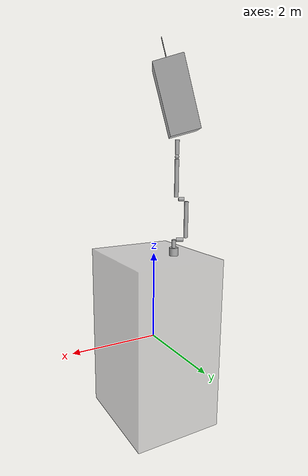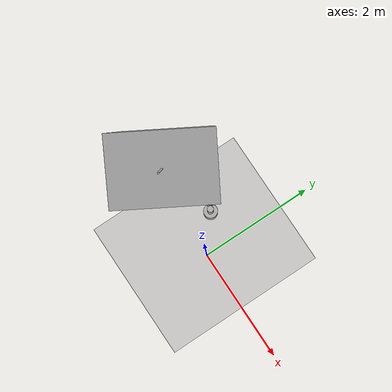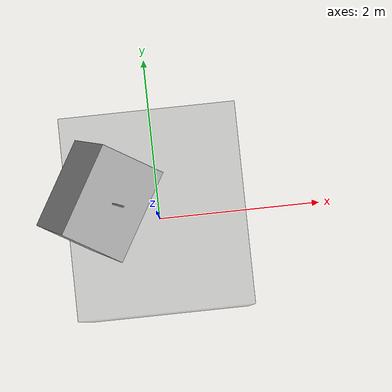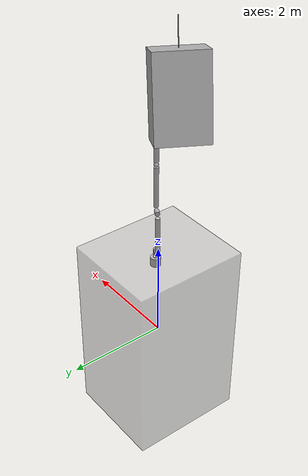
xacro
<?xml version="1.0" ?>
<robot xmlns:xacro="http://wiki.ros.org/xacro" name="FREND">
  <xacro:arg name="prefix" default=""/>
  <xacro:property name="mass_scale" value="1" />
  <xacro:property name="rval" value="0.7"/>
  <xacro:property name="gval" value="0.7"/>
  <xacro:property name="bval" value="0.7"/>

  <mujoco>
    <compiler fusestatic="false" inertiafromgeom="false" />
  </mujoco>

    <!-- Base link is referred to as "MRV in NG's docs"-->
  <link name="$(arg prefix)base_link">
    <visual>
      <origin rpy="0 0 0" xyz="0 0 0"/>
      <geometry>
        <box size="2.068 2.372 3.975"/>
      </geometry>
      <material name="transparent_gray">
        <color rgba="${rval} ${gval} ${bval} 0.5"/>
      </material>
    </visual>
    <inertial>
      <mass value="${4469*mass_scale}"/>
      <origin rpy="0 0 0" xyz="0 0 0"/>
      <inertia ixx="${7979.775268*mass_scale}" ixy="0" ixz="0"
               iyy="${7477.102148*mass_scale}" iyz="0" izz="${3688.045229*mass_scale}"/>
    </inertial>
    <collision>
      <origin rpy="0 0 0" xyz="0 0 0"/>
      <geometry>
        <box size="2.068 2.372 3.975"/>
      </geometry>
    </collision>
  </link>

    <!-- Joint/Link 0-->
  <joint name="$(arg prefix)joint0" type="fixed">
  <parent link="$(arg prefix)base_link"/>
    <child link="$(arg prefix)link0"/>
    <origin rpy="0 0 -2.0969" xyz="-0.3182 0.3182 1.9875"/>

  </joint>

  <link name="$(arg prefix)link0">
    <visual>
      <origin rpy="0 0 0" xyz="0 0 0.0894"/>
      <geometry>
        <cylinder length="0.178765" radius="0.1"/> <!-- We make link0 half the length of D1 in NG's doc.-->
      </geometry>
      <material name="black">
        <color rgba="${rval} ${gval} ${bval} 1"/>
      </material>
    </visual>
    <inertial>
      <mass value="${15.8469*mass_scale}"/>
      <origin rpy="0 0 0" xyz="0 0 0"/>
      <inertia ixx="${0.089080800*mass_scale}" ixy="0" ixz="0"
               iyy="${0.089080800*mass_scale}" iyz="0" izz="${0.07923450*mass_scale}"/>
    </inertial>
    <collision>
      <origin rpy="0 0 0" xyz="0 0 0.0894"/>
      <geometry>
        <cylinder length="0.178765" radius="0.1"/>
      </geometry>
    </collision>
  </link>

  <!-- Joint/Link 1-->
  <joint name="$(arg prefix)joint1" type="revolute">
  <parent link="$(arg prefix)link0"/>
    <child link="$(arg prefix)link1"/>
    <origin rpy="0 0 0" xyz="0 0 0.178765"/>
    <axis xyz="0 0 1"/>
    <dynamics damping="0" friction="0"/>
    <limit effort="150.0" lower="-2.792526803" upper="2.792526803" velocity="0.06981317008"/>
  </joint>

  <link name="$(arg prefix)link1">
    <visual>
      <origin rpy="0 0 0" xyz="0 0 0.0894"/>
      <geometry>
        <cylinder length="0.178765" radius="0.045"/>
      </geometry>
      <material name="black">
        <color rgba="${rval} ${gval} ${bval} 1"/>
      </material>
    </visual>
    <inertial>
      <mass value="${21.4021*mass_scale}"/>
      <origin rpy="0 0 0" xyz="0 0 0"/>
      <inertia ixx="${0.07836099*mass_scale}" ixy="0" ixz="0"
               iyy="${0.07836099*mass_scale}" iyz="0" izz="${0.02675263*mass_scale}"/>
    </inertial>
    <collision>
      <origin rpy="0 0 0" xyz="0 0 0.0894"/>
      <geometry>
        <cylinder length="0.178765" radius="0.045"/>
      </geometry>
    </collision>
  </link>

 <!-- Joint/Link 2-->
  <joint name="$(arg prefix)joint2" type="revolute">
  <parent link="$(arg prefix)link1"/>
    <child link="$(arg prefix)link2"/>
    <origin rpy="1.5707963267948966 0 0" xyz="0 0 0.178765"/>
    <axis xyz="0 0 1"/>
    <dynamics damping="0" friction="0"/>
    <limit effort="150.0" lower="-1.745329252" upper="1.745329252" velocity="0.06981317008"/>
  </joint>

    <link name="$(arg prefix)link2">
    <visual>
      <origin rpy="0 0 0" xyz="0 0 0.12954"/>
      <geometry>
        <cylinder length="0.15908" radius="0.045"/>
      </geometry>
      <material name="black">
        <color rgba="${rval} ${gval} ${bval} 1"/>
      </material>
    </visual>
    <inertial>
      <mass value="${16.5794*mass_scale}"/>
      <origin rpy="0 0 0" xyz="0 0 0"/>
      <inertia ixx="${0.11988023*mass_scale}" ixy="0" ixz="0"
               iyy="${0.11988023*mass_scale}" iyz="0" izz="${0.02072425*mass_scale}"/>
    </inertial>
    <collision>
      <origin rpy="0 0 0" xyz="0 0 0.12954"/>
      <geometry>
        <cylinder length="0.15908" radius="0.045"/>
      </geometry>
    </collision>
  </link>

  <!-- Joint/Link 3-->
  <joint name="$(arg prefix)joint3" type="revolute">
  <parent link="$(arg prefix)link2"/>
    <child link="$(arg prefix)link3"/>
    <origin rpy="-1.5707963267948966 0 0" xyz="0 0 0.25908"/>
    <axis xyz="0 0 1"/>
    <dynamics damping="0" friction="0"/>
    <limit effort="150.0" lower="-2.967059728" upper="2.565634" velocity="0.1047197551"/>
  </joint>

    <link name="$(arg prefix)link3">
    <visual>
      <origin rpy="0 0 0" xyz="0 0 0.45"/>
      <geometry>
        <cylinder length="0.8" radius="0.045"/>
      </geometry>
      <material name="black">
        <color rgba="${rval} ${gval} ${bval} 1"/>
      </material>
    </visual>
    <inertial>
      <mass value="${18.0461*mass_scale}"/>
      <origin rpy="0 0 0" xyz="0 0 0"/>
      <inertia ixx="${1.43189056*mass_scale}" ixy="0" ixz="0"
               iyy="${1.43189056*mass_scale}" iyz="0" izz="${0.0255763*mass_scale}"/>
    </inertial>
    <collision>
      <origin rpy="0 0 0" xyz="0 0 0.45"/>
      <geometry>
        <cylinder length="0.8" radius="0.045"/>
      </geometry>
    </collision>
  </link>

  <!-- Joint/Link 4-->
  <joint name="$(arg prefix)joint4" type="revolute">
  <parent link="$(arg prefix)link3"/>
    <child link="$(arg prefix)link4"/>
    <origin rpy="1.5707963267948966 0 0" xyz="0 0 0.9"/>
    <axis xyz="0 0 1"/>
    <dynamics damping="0" friction="0"/>
    <limit effort="150.0" lower="-2.967059728" upper="2.617993878" velocity="0.1047197551"/>
  </joint>

  <link name="$(arg prefix)link4">
    <visual>
      <origin rpy="0 0 0" xyz="0 0 -0.111125"/>
      <geometry>
        <cylinder length="0.12225" radius="0.045"/>
      </geometry>
      <material name="black">
        <color rgba="${rval} ${gval} ${bval} 1"/>
      </material>
    </visual>
    <inertial>
      <mass value="${9.7351*mass_scale}"/>
      <origin rpy="0 0 0" xyz="0 0 0"/>
      <inertia ixx="${0.05850536*mass_scale}" ixy="0" ixz="0"
               iyy="${0.05850536*mass_scale}" iyz="0" izz="${0.01216888*mass_scale}"/>
    </inertial>
    <collision>
      <origin rpy="0 0 0" xyz="0 0 -0.111125"/>
      <geometry>
        <cylinder length="0.12225" radius="0.045"/>
      </geometry>
    </collision>
  </link>

  <!-- Joint/Link 5-->
  <joint name="$(arg prefix)joint5" type="revolute">
  <parent link="$(arg prefix)link4"/>
    <child link="$(arg prefix)link5"/>
    <origin rpy="-1.5707963267948966 0 0" xyz="0 0 -0.22225"/>
    <axis xyz="0 0 1"/>
    <dynamics damping="0" friction="0"/>
    <limit effort="150.0" lower="-4.36332313" upper="2.617993878" velocity="0.1221730476"/>
  </joint>

  <link name="$(arg prefix)link5">
    <visual>
      <origin rpy="0 0 0" xyz="0 0 0.450085"/>
      <geometry>
        <cylinder length="0.8017" radius="0.045"/>
      </geometry>
      <material name="black">
        <color rgba="${rval} ${gval} ${bval} 1"/>
      </material>
    </visual>
    <inertial>
      <mass value="${7.7539*mass_scale}"/>
      <origin rpy="0 0 0" xyz="0 0 0"/>
      <inertia ixx="${0.73100869*mass_scale}" ixy="0" ixz="0"
               iyy="${0.73100869*mass_scale}" iyz="0" izz="${0.00969238*mass_scale}"/>
    </inertial>
    <collision>
      <origin rpy="0 0 0" xyz="0 0 0.4500"/>
      <geometry>
        <cylinder length="0.8017" radius="0.045"/>
      </geometry>
    </collision>
  </link>

  <!-- Joint/Link 6-->
  <joint name="$(arg prefix)joint6" type="revolute">
  <parent link="$(arg prefix)link5"/>
    <child link="$(arg prefix)link6"/>
    <origin rpy="1.5707963267948966 0 0" xyz="0 0 0.90017"/>
    <axis xyz="0 0 1"/>
    <dynamics damping="0" friction="0"/>
    <limit effort="150.0" lower="-1.919862177" upper="1.919862177" velocity="0.1221730476"/>
  </joint>

  <link name="$(arg prefix)link6">
    <visual>
      <origin rpy="0 0 0" xyz="0 0 0"/>
      <geometry>
        <sphere radius="0.045"/>
      </geometry>
      <material name="black">
        <color rgba="${rval} ${gval} ${bval} 1"/>
      </material>
    </visual>
    <inertial>
      <mass value="${5.5820*mass_scale}"/>
      <origin rpy="0 0 0" xyz="0 0 0"/>
      <inertia ixx="${0.01064042*mass_scale}" ixy="0" ixz="0"
               iyy="${0.01064042*mass_scale}" iyz="0" izz="${0.00697750*mass_scale}"/>
    </inertial>
    <collision>
      <origin rpy="0 0 0" xyz="0 0 0"/>
      <geometry>
        <sphere radius="0.045"/>
      </geometry>
    </collision>
  </link>

  <!--Joint/Link 7-->
  <joint name="$(arg prefix)joint7" type="revolute">
  <parent link="$(arg prefix)link6"/>
    <child link="$(arg prefix)link7"/>
    <origin rpy="-1.5707963267948966 0 0" xyz="0 0 0"/>
    <axis xyz="0 0 1"/>
    <dynamics damping="0" friction="0"/>
    <limit effort="150.0" lower="-4.310963252" upper="1.169370599" velocity="0.12217304762"/>
  </joint>

  <link name="$(arg prefix)link7">
    <visual>
      <origin rpy="0 0 0" xyz="0 0 0.20395"/>
      <geometry>
        <cylinder length="0.3079" radius="0.045"/>
      </geometry>
      <material name="black">
        <color rgba="${rval} ${gval} ${bval} 1"/>
      </material>
    </visual>
    <inertial>
      <mass value="${5.2186*mass_scale}"/>
      <origin rpy="0 0 0" xyz="0 0 0"/>
      <inertia ixx="${0.11721416*mass_scale}" ixy="0" ixz="0"
               iyy="${0.11721416*mass_scale}" iyz="0" izz="${0.00652325*mass_scale}"/>
    </inertial>
    <collision>
      <origin rpy="0 0 0" xyz="0 0 0.20395"/>
      <geometry>
        <cylinder length="0.3079" radius="0.045"/>
      </geometry>
    </collision>
  </link>

  <!-- Wrist joint -->
  <joint name="$(arg prefix)wrist_joint" type="fixed">
  <parent link="$(arg prefix)link7"/>
    <child link="$(arg prefix)wrist"/>
    <origin rpy="0 0 0" xyz="0 0 0.2979"/>
  </joint>

  <link name="$(arg prefix)wrist">
      <inertial>
      <mass value="0"/>
      <origin rpy="0 0 0" xyz="0 0 0"/>
      <inertia ixx="0" ixy="0" ixz="0"
               iyy="0" iyz="0" izz="0"/>
    </inertial>
  </link>

  <!-- MEP offset and MEP link-->
  <!-- MEP is attached in parallel with wrist-->
  <joint name="$(arg prefix)mep_offset" type="fixed">
  <parent link="$(arg prefix)link7"/>
    <child link="$(arg prefix)ee_body"/>
    <origin rpy="0 -0.261799167 -1.570795" xyz="0.376 -0.170 0.5009"/>
  </joint>

  <link name="$(arg prefix)ee_body">
    <visual>
      <origin rpy="0 0 0" xyz="0 0 0.759"/>
      <geometry>
        <box size="0.66 0.967 1.518"/>
      </geometry>
      <material name="black">
        <color rgba="${rval} ${gval} ${bval} 1"/>
      </material>
    </visual>
    <inertial>
      <mass value="${411*mass_scale}"/>
      <origin rpy="0 0 0" xyz="0 0 0"/>
      <inertia ixx="${347.7191863*mass_scale}" ixy="0" ixz="0"
               iyy="${330.611688*mass_scale}" iyz="0" izz="${46.946098253*mass_scale}"/>
    </inertial>
    <collision>
      <origin rpy="0 0 0" xyz="0 0 0.759"/>
      <geometry>
        <box size="0.66 0.967 1.518"/>
      </geometry>
    </collision>
  </link>

  <!-- EE CoM -->
  <joint name="$(arg prefix)ee_com_joint" type="fixed">
  <parent link="$(arg prefix)ee_body"/>
    <child link="$(arg prefix)ee_com"/>
    <origin rpy="0 0 0" xyz="0 0 0.4675"/>
  </joint>

  <link name="$(arg prefix)ee_com">
    <inertial>
      <mass value="0"/>
      <origin rpy="0 0 0" xyz="0 0 0"/>
      <inertia ixx="0" ixy="0" ixz="0"
               iyy="0" iyz="0" izz="0"/>
    </inertial>
  </link>

  <!-- EE peg -->
  <joint name="$(arg prefix)ee_peg_joint" type="fixed">
  <parent link="$(arg prefix)ee_body"/>
    <child link="$(arg prefix)ee_peg"/>
    <origin rpy="0 0 0" xyz="0 0 1.3101"/>
  </joint>

  <link name="$(arg prefix)ee_peg">
    <visual>
      <origin rpy="0 0 0" xyz="0 0 0.36"/>
      <geometry>
        <cylinder length="0.72" radius="0.008"/>
      </geometry>
      <material name="white">
        <color rgba="${rval} ${gval} ${bval} 1"/>
      </material>
    </visual>
    <inertial>
      <mass value="${10*mass_scale}"/>
      <origin rpy="0 0 0" xyz="0 0 0"/>
      <inertia ixx="${1.1101*mass_scale}" ixy="0" ixz="0"
               iyy="${1.1101*mass_scale}" iyz="0" izz="${0.0125*mass_scale}"/>
    </inertial>
    <collision>
      <origin rpy="0 0 0" xyz="0 0 0.36"/>
      <geometry>
        <cylinder length="0.72" radius="0.008"/>
      </geometry>
    </collision>
  </link>

 <!-- Peg center-->
  <joint name="$(arg prefix)peg_center_joint" type="fixed">
  <parent link="$(arg prefix)ee_peg"/>
    <child link="$(arg prefix)peg_center"/>
    <origin rpy="0 0 0" xyz="0 0 0.36"/>
  </joint>

  <link name="$(arg prefix)peg_center">
  <inertial>
      <mass value="0"/>
      <origin rpy="0 0 0" xyz="0 0 0"/>
      <inertia ixx="0" ixy="0" ixz="0"
               iyy="0" iyz="0" izz="0"/>
    </inertial>
  </link>

  <!-- EE Tip-->
  <joint name="$(arg prefix)ee_tip_joint" type="fixed">
  <parent link="$(arg prefix)ee_peg"/>
    <child link="$(arg prefix)ee_tip"/>
    <origin rpy="0 0 0" xyz="0 0 0.72"/>
  </joint>

    <link name="$(arg prefix)ee_tip">
    <inertial>
      <mass value="0"/>
      <origin rpy="0 0 0" xyz="0 0 0"/>
      <inertia ixx="0" ixy="0" ixz="0"
               iyy="0" iyz="0" izz="0"/>
    </inertial>

  </link>

  <!-- Cam link-->
  <joint name="$(arg prefix)cam_joint" type="fixed">
  <parent link="$(arg prefix)base_link"/>
    <child link="$(arg prefix)cam_link"/>
    <origin rpy="0 0 0" xyz="0.889 0.548 1.953"/>
  </joint>

  <link name="$(arg prefix)cam_link">
    <inertial>
      <mass value="0"/>
      <origin rpy="0 0 0" xyz="0 0 0"/>
      <inertia ixx="0" ixy="0" ixz="0"
               iyy="0" iyz="0" izz="0"/>
    </inertial>
  </link>

</robot>
